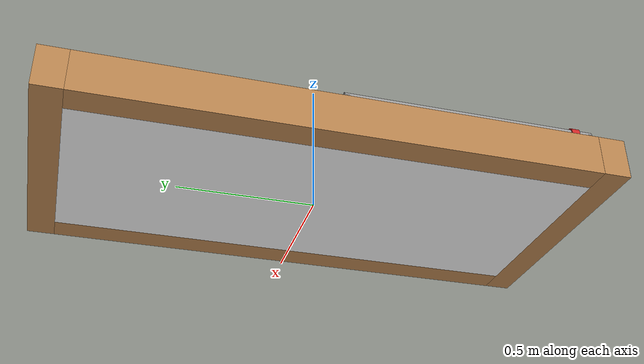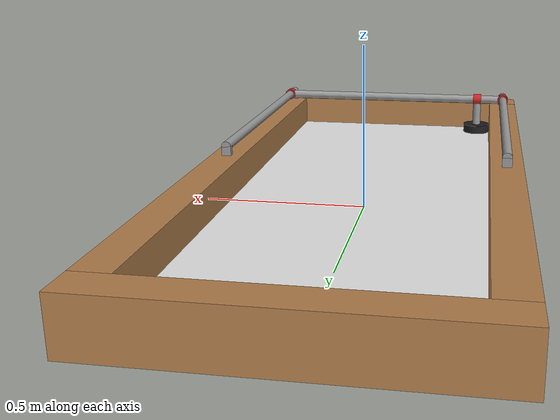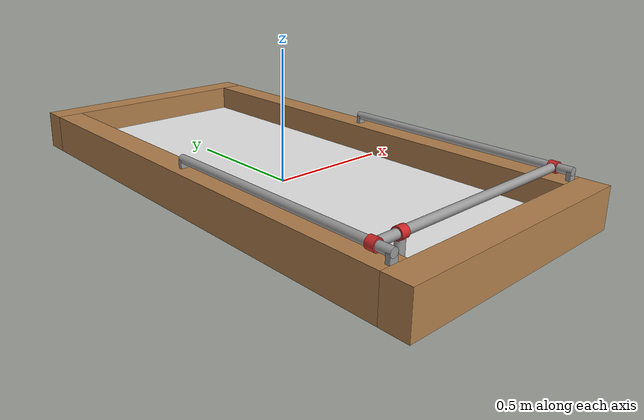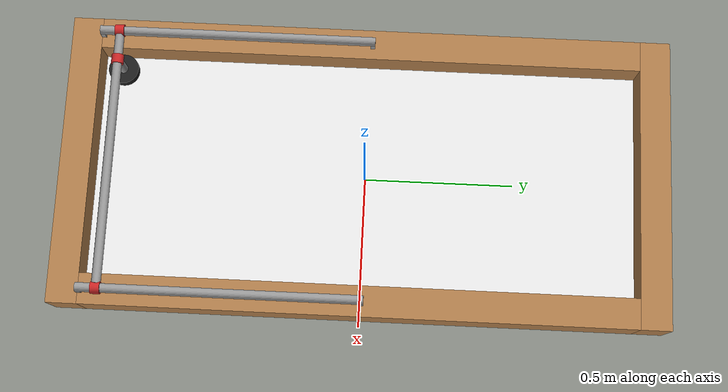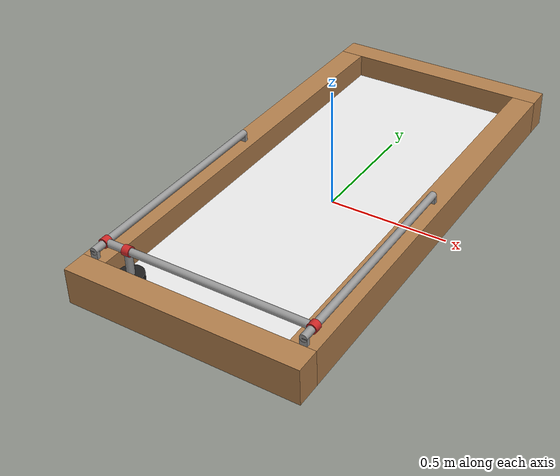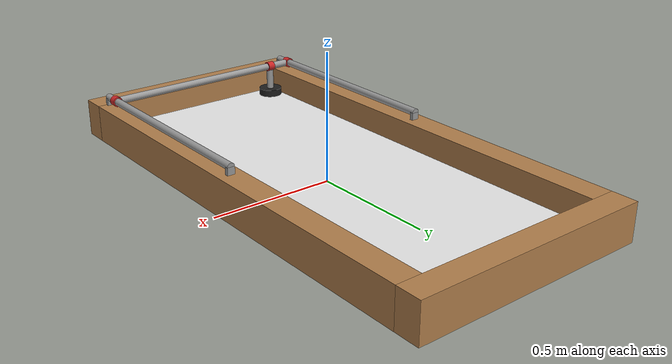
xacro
<?xml version="1.0"?>
<robot name="gazebo1" xmlns:xacro="http://ros.org/wiki/xacro">

  <!-- _______________ Ordforklaringer _______________ -->

  <!--  E = East, W = West, N = North, S = South    (Sett fra roboten sin side) -->
  <!--  L = Lengde, B = Bredde, H = Hoyde                                       -->
  <!--  D = Down, U = Up                            (Sett fra roboten sin side) -->

  <!-- ________________________ DEKLARERING ________________________ -->

	<!-- _______________ Variabler _______________ -->

  <xacro:property name="rpy_default" value="0 0 0" />
	<xacro:property name="xyz_default" value="0 0 0" />
	<xacro:property name="baseL" value="1.8" />
  <xacro:property name="baseB" value="0.76" />
  <xacro:property name="baseH" value="0.05" />
  <xacro:property name="pi" value="3.1415" />
  <xacro:property name="veggB" value="0.1" />
  <xacro:property name="veggH" value="0.15" />
  <xacro:property name="sylinderHolderDim" value="0.03" />
  <xacro:property name="sylinderR" value="0.015" />
  <xacro:property name="sliderR" value="0.02" />
  <xacro:property name="sliderL" value="0.03" />
  <xacro:property name="racketR" value="0.05" />
  <xacro:property name="racketL" value="0.03" />
  <xacro:property name="slider1Velocity" value="4" />
  <xacro:property name="slider2Velocity" value="4" />

  <xacro:macro name="default_inertial" params="mass">
    <inertial>
      <mass value="${mass}" />
      <inertia ixx="0.00035" ixy="0.0" ixz="0.0" iyy="0.00035" iyz="0.0" izz="0.0004" />
      <origin rpy="${pi/2} 0 0" xyz="0 ${sliderL/2} 0"/>
    </inertial>
  </xacro:macro>

	<!-- _______________ Kube genererings funksjon _______________ -->

  <xacro:macro name="kube" params ="navn b l h xyz:={xyz_default} rpy:=${rpy_default} mass:=10 farge:=Gazebo/White">
    <link name="${navn}">
      <visual>
        <geometry>
          <box size="${b} ${l} ${h}"/>
        </geometry>
        <origin rpy="${rpy}" xyz="${xyz}"/>
      </visual>
      <collision>
        <geometry>
          <box size="${b} ${l} ${h}"/>
        </geometry>
        <origin rpy="${rpy}" xyz="${xyz}"/>
      </collision>
        <inertial>
        	<mass value="${mass}" />
        	<inertia ixx="${mass*(l*l+h*h)/12}" ixy="0.0" ixz="0.0" iyy="${mass*(b*b+h*h)/12}" iyz="0.0" izz="${mass*(b*b+l*l)/12}" />
        	<origin rpy="${rpy}" xyz="${xyz}"/>
        </inertial>
    </link>

    <gazebo reference="${navn}">
        <material>${farge}</material>
    </gazebo>
  </xacro:macro>

  <!-- _______________ Vegg genererings funksjon _______________ -->

<xacro:macro name="kube2" params ="navn b l h xyz:={xyz_default} rpy:=${rpy_default} mass:=10 farge:=Gazebo/White">
    <link name="${navn}">
      <visual>
        <geometry>
          <box size="${b} ${l} ${h}"/>
        </geometry>
        <origin rpy="${rpy}" xyz="${xyz}"/>
      </visual>
      <collision>
        <geometry>
          <box size="${b} ${l} ${h}"/>
        </geometry>
        <origin rpy="${rpy}" xyz="${xyz}"/>
        <surface>
          <bounce restitution_coefficient="0.5" threshold="0"/>
        </surface>
        <contact>
          <ode>
             <max_vel>20</max_vel>
          </ode>
        </contact>
      </collision>
        <inertial>
        	<mass value="${mass}" />
        	<inertia ixx="${mass*(l*l+h*h)/12}" ixy="0.0" ixz="0.0" iyy="${mass*(b*b+h*h)/12}" iyz="0.0" izz="${mass*(b*b+l*l)/12}" />
        	<origin rpy="${rpy}" xyz="${xyz}"/>
        </inertial>
    </link>

    <gazebo reference="${navn}">
      <mu1 value="100.0" />
      <mu2 value="100.0" />
      **<maxVel value="20.0"/>**
      <kp value="100000.0" />
      <kd value="0.1" />
      <turnGravityOff>false</turnGravityOff>
      <material>${farge}</material>
    </gazebo>
  </xacro:macro>

  <!-- _______________ Sylinder genererings funksjon _______________ -->

	<xacro:macro name="sylinder" params ="navn r l xyz:={xyz_default} rpy:=${rpy_default} mass:=10 farge:=Gazebo/White">
    <link name="${navn}">
      <visual>
        <geometry>
          <cylinder radius="${r}" length="${l}"/>
        </geometry>
        <origin rpy="${rpy}" xyz="${xyz}"/>
      </visual>
      <collision>
        <geometry>
          <cylinder radius="${r}" length="${l}"/>
        </geometry>
        <origin rpy="${rpy}" xyz="${xyz}"/>
        <surface>
          <bounce restitution_coefficient="0.5" threshold="0"/>
        </surface>
        <contact>
          <ode>
             <max_vel>20</max_vel>
          </ode>
        </contact>
      </collision>
        <inertial>
        	<mass value="${mass}" />
        	<inertia ixx="${mass*(3*r*r+l*l)/6}" ixy="0.0" ixz="0.0" iyy="${mass*(3*r*r+l*l)/6}" iyz="0.0" izz="${mass*r*r}" />
          <origin rpy="${rpy}" xyz="${xyz}"/>

        </inertial>
    </link>

    <gazebo reference="${navn}">
      <mu1 value="100.0" />
      <mu2 value="100.0" />
      **<maxVel value="20.0"/>**
      <kp value="10000.0" />
      <kd value="0.1" />
      <turnGravityOff>false</turnGravityOff>
      <material>${farge}</material>
    </gazebo>
  </xacro:macro>

  <!-- ___________________________ MODELL ___________________________ -->

	<!-- _______________ Ground base _______________ -->

  <link name="dummy">
  </link>

  <xacro:kube2 navn="base_link" b="${baseB}" l="${baseL}" h="${baseH}" xyz="0 0 ${baseH/2}" mass="20" />

  <joint name="dummy_joint" type="fixed">
		<parent link="dummy"/>
		<child link="base_link"/>
		<origin xyz="0 0 0" />
	</joint>

	<!-- _______________ Vegger _______________ -->

  <xacro:kube2 navn="veggE" b="${veggB}" l="${baseL}" h="${veggH}" xyz="${veggB/2} 0 ${veggH/2}" mass="4" farge="Gazebo/Wood"/>
  <xacro:kube2 navn="veggW" b="${veggB}" l="${baseL}" h="${veggH}" xyz="${-veggB/2} 0 ${veggH/2}" mass="4" farge="Gazebo/Wood" />
  <xacro:kube2 navn="veggN" b="${baseB + 2*veggB}" l="${veggB}" h="${veggH}" xyz="0 ${veggB/2} ${veggH/2}" mass="4" farge="Gazebo/Wood"/>
  <xacro:kube2 navn="veggS" b="${baseB + 2*veggB}" l="${veggB}" h="${veggH}" xyz="0 ${-veggB/2} ${veggH/2}" mass="4" farge="Gazebo/Wood"/>

  <joint name="veggE_base" type="fixed">
		<parent link="base_link"/>
		<child link="veggE"/>
		<origin xyz="${baseB/2} 0 0" />
	</joint>

  <joint name="veggW_base" type="fixed">
		<parent link="base_link"/>
		<child link="veggW"/>
		<origin xyz="${-baseB/2} 0 0" />
	</joint>

  <joint name="veggN_base" type="fixed">
		<parent link="base_link"/>
		<child link="veggN"/>
		<origin xyz="0 ${baseL/2} 0" />
	</joint>

  <joint name="veggS_base" type="fixed">
		<parent link="base_link"/>
		<child link="veggS"/>
		<origin xyz="0 ${-baseL/2} 0" />
	</joint>

  <!-- _______________ Sylinder og Sylinderholder _______________ -->

  <xacro:kube2 navn="sylinderHolderED" b="${sylinderHolderDim}" l="${sylinderHolderDim/2}" h="${sylinderHolderDim}"
              xyz="0 ${sylinderHolderDim/4} ${sylinderHolderDim/2}" mass="0.5" farge ="Gazebo/Grey"/>

  <xacro:kube2 navn="sylinderHolderEU" b="${sylinderHolderDim}" l="${sylinderHolderDim/2}" h="${sylinderHolderDim}"
              xyz="0 ${sylinderHolderDim/4} ${sylinderHolderDim/2}" mass="0.5" farge ="Gazebo/Grey"/>

  <xacro:kube2 navn="sylinderHolderWU" b="${sylinderHolderDim}" l="${sylinderHolderDim/2}" h="${sylinderHolderDim}"
              xyz="0 ${sylinderHolderDim/4} ${sylinderHolderDim/2}" mass="0.5" farge ="Gazebo/Grey"/>

  <xacro:kube2 navn="sylinderHolderWD" b="${sylinderHolderDim}" l="${sylinderHolderDim/2}" h="${sylinderHolderDim}"
              xyz="0 ${sylinderHolderDim/4} ${sylinderHolderDim/2}" mass="0.5" farge ="Gazebo/Grey" />

  <joint name="sylinderHolderED_VeggE" type="fixed">
    <parent link="veggE"/>
    <child link="sylinderHolderED"/>
    <origin xyz="${veggB/2} ${-baseL/2} ${veggH}"/>
  </joint>

  <joint name="sylinderHolderEU_VeggE" type="fixed">
    <parent link="veggE"/>
    <child link="sylinderHolderEU"/>
    <origin xyz="${veggB/2} 0 ${veggH}"/>
  </joint>

  <joint name="sylinderHolderWU_VeggE" type="fixed">
    <parent link="veggW"/>
    <child link="sylinderHolderWU"/>
    <origin xyz="${-veggB/2} 0 ${veggH}"/>
  </joint>

  <joint name="sylinderHolderWD_VeggE" type="fixed">
    <parent link="veggW"/>
    <child link="sylinderHolderWD"/>
    <origin xyz="${-veggB/2} ${-baseL/2} ${veggH}"/>
  </joint>

  <xacro:sylinder navn="sylinderE" r="${sylinderR}" l="${baseL/2 + sylinderHolderDim/2}"
                  xyz="0 ${(baseL/2 + sylinderHolderDim/2)/2} 0" rpy="${pi/2} 0 0" mass="1" farge ="Gazebo/Grey"/>

  <xacro:sylinder navn="sylinderW" r="${sylinderR}" l="${baseL/2 + sylinderHolderDim/2}"
                  xyz="0 ${(baseL/2 + sylinderHolderDim/2)/2} 0" rpy="${pi/2} 0 0" mass="1" farge ="Gazebo/Grey"/>

  <joint name="sylinderHolderED_sylinderE" type="fixed">
    <parent link="sylinderHolderED"/>
    <child link="sylinderE"/>
    <origin xyz="0 0 ${sylinderHolderDim}"/>
  </joint>

  <joint name="sylinderHolderWD_sylinderW" type="fixed">
    <parent link="sylinderHolderWD"/>
    <child link="sylinderW"/>
    <origin xyz="0 0 ${sylinderHolderDim}"/>
  </joint>

  <!-- _______________ Slidere _______________ -->

  <xacro:sylinder navn="slider1" r="${sliderR}" l="${sliderL}"
                  xyz="0 ${sliderL/2} 0" rpy="${pi/2} 0 0" mass="1" farge ="Gazebo/Red"/>

  <joint name="slider1_control" type="prismatic">
    <parent link="sylinderW"/>
    <child link="slider1"/>
    <limit effort="1000.0" lower="0" upper="${baseL/2-sylinderHolderDim-racketR}" velocity="${slider1Velocity}"/>
    <origin xyz="0 ${racketR} 0"/>
    <axis xyz="0 1 0"/>
    <limit effort="30" velocity="${slider1Velocity}"/>
    <dynamics damping="1" friction="1"/>
  </joint>

  <xacro:sylinder navn="sylinderMiddle" r="${sylinderR}" l="${baseB + veggB-2*sylinderR}"
                  xyz="${(baseB + veggB-2*sylinderR)/2} 0 0" rpy="0 ${pi/2} 0" mass="0.1" farge ="Gazebo/Grey"/>

  <joint name="sylinderMiddle_slider1" type="fixed">
    <parent link="slider1"/>
    <child link="sylinderMiddle"/>
    <origin xyz="${sylinderR} ${sliderL/2} 0"/>
  </joint>

  <xacro:sylinder navn="slider2" r="${sliderR}" l="${sliderL}"
                  xyz="0 ${sliderL/2} 0" rpy="${pi/2} 0 0" mass="0.1" farge ="Gazebo/Red"/>

  <joint name="slider2_sylinderMiddle" type="fixed">
    <parent link="sylinderMiddle"/>
    <child link="slider2"/>
    <origin xyz="${(baseB + veggB-2*sylinderR) + sylinderR} ${-sliderL/2} 0"/>
  </joint>

  <xacro:sylinder navn="sliderMiddle" r="${sliderR}" l="${sliderL}"
                  xyz="${sliderL/2} 0 0" rpy="0 ${pi/2} 0" mass="0.1" farge ="Gazebo/Red"/>

  <joint name="slider2_control" type="prismatic">
    <parent link="sylinderMiddle"/>
    <child link="sliderMiddle"/>
    <limit effort="1000.0" lower="0" upper="${baseB - racketR*2}" velocity="${slider2Velocity}"/>
    <origin xyz="${(veggB/2-sylinderR+racketR-sliderL/2)}  0  0"/>
    <axis xyz="1 0 0"/>
    <dynamics damping="0.1" friction="0.1"/>
  </joint>

  <!-- _______________ Robot racket _______________ -->

  <xacro:sylinder navn="racketHolder" r="${sylinderR}" l="${veggH+sylinderHolderDim-baseH-sylinderR}"
                  xyz="0 0 ${-(veggH+sylinderHolderDim-baseH-sylinderR)/2}" rpy="0 0 0" mass="0.1" farge ="Gazebo/Grey"/>

  <joint name="sliderMiddle_racketHolder" type="fixed">
    <parent link="sliderMiddle"/>
    <child link="racketHolder"/>
    <origin xyz="${sliderL/2} 0 ${-sylinderR}"/>
  </joint>

  <xacro:sylinder navn="racket" r="${racketR}" l="${racketL}" farge="Gazebo/Black"
                  xyz="0 0 ${racketL/2}" rpy="0 0 0" mass="0.1"/>

  <joint name="racketHolder_racket" type="fixed">
    <parent link="racketHolder"/>
    <child link="racket"/>
    <origin xyz="0 0 ${-(veggH+sylinderHolderDim-baseH-sylinderR)} "/>
  </joint>

  <!-- _______________ Styring av prismatiske ledd _______________ -->

  <!-- __ EffortJointInterface __ -->

    <transmission name="slider1_control_trans" type="transmission_interface/SimpleTransmission">
    <type>transmission_interface/SimpleTransmission</type>
    <actuator name="slider1_control_motor">
      <hardwareInterface>hardware_interface/EffortJointInterface</hardwareInterface>
      <mechanicalReduction>1</mechanicalReduction>
    </actuator>
    <joint name="slider1_control">
      <hardwareInterface>hardware_interface/EffortJointInterface</hardwareInterface>
    </joint>
  </transmission>

    <transmission name="slider2_control_trans" type="transmission_interface/SimpleTransmission">
    <type>transmission_interface/SimpleTransmission</type>
    <actuator name="slider2_control_motor">
      <hardwareInterface>hardware_interface/EffortJointInterface</hardwareInterface>
      <mechanicalReduction>1</mechanicalReduction>
    </actuator>
    <joint name="slider2_control">
      <hardwareInterface>hardware_interface/EffortJointInterface</hardwareInterface>
    </joint>
  </transmission>

  <!-- ______________________ Plugin __________________________ -->

  <gazebo>
    <plugin name="gazebo_ros_control" filename="libgazebo_ros_control.so">
      <robotNamespace>/</robotNamespace>
    </plugin>
  </gazebo>

</robot>
